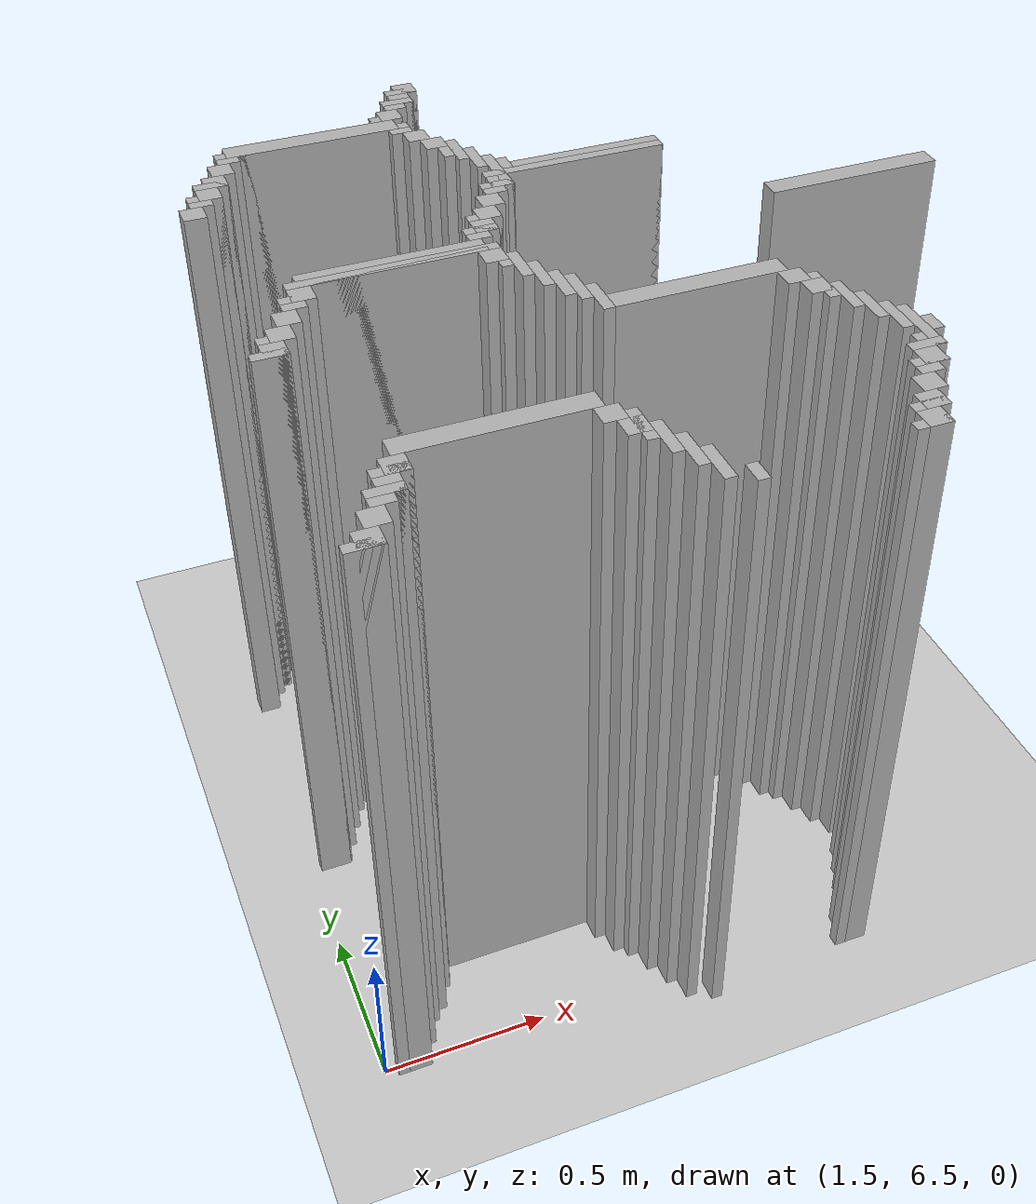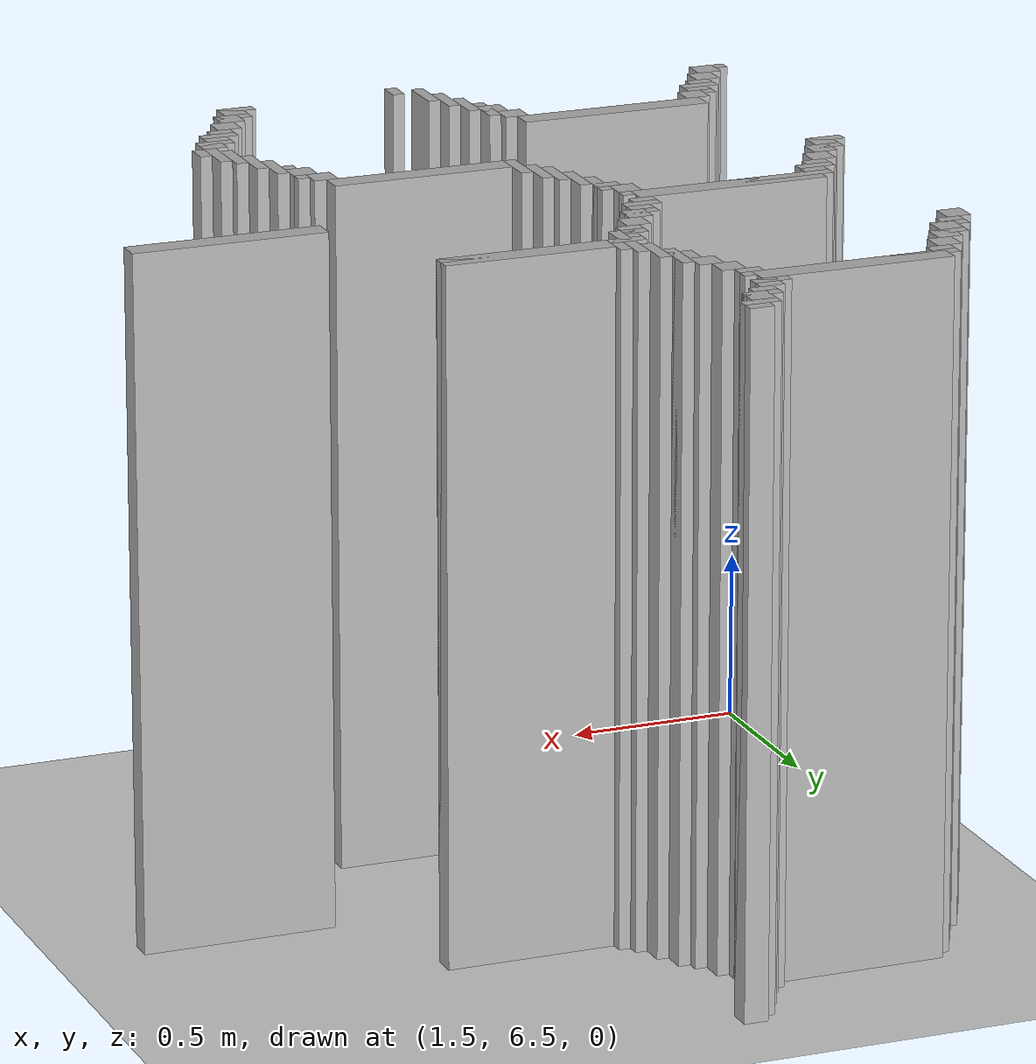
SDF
<sdf version="1.6">
 <world name="slam_world">
  <model name="ground_plane">
   <static>true</static>
   <link name="link">
    <collision name="collision">
     <geometry><plane><normal>0 0 1</normal><size>100 100</size></plane></geometry>
    </collision>
    <visual name="visual">
     <geometry><plane><normal>0 0 1</normal><size>100 100</size></plane></geometry>
     <material>
      <ambient>0.8 0.8 0.8 1</ambient>
      <diffuse>0.8 0.8 0.8 1</diffuse>
      <specular>0.8 0.8 0.8 1</specular>
     </material>
    </visual>
   </link>
  </model>
  <model name="wall_2923">
   <static>true</static>
   <pose>2.4013921113689096 8.735498839907192 1.0 0 0 0</pose>
   <link name="link">
    <collision name="collision">
     <geometry><box><size>0.06960556844547564 0.06960556844547564 2.0</size></box></geometry>
    </collision>
    <visual name="visual">
     <geometry><box><size>0.06960556844547564 0.06960556844547564 2.0</size></box></geometry>
     <material><ambient>0.5 0.5 0.5 1</ambient><diffuse>0.7 0.7 0.7 1</diffuse></material>
    </visual>
   </link>
  </model>
  <model name="wall_2938">
   <static>true</static>
   <pose>2.3839907192575405 8.718097447795824 1.0 0 0 0</pose>
   <link name="link">
    <collision name="collision">
     <geometry><box><size>0.10440835266821345 0.03480278422273782 2.0</size></box></geometry>
    </collision>
    <visual name="visual">
     <geometry><box><size>0.10440835266821345 0.03480278422273782 2.0</size></box></geometry>
     <material><ambient>0.5 0.5 0.5 1</ambient><diffuse>0.7 0.7 0.7 1</diffuse></material>
    </visual>
   </link>
  </model>
  <model name="wall_2952">
   <static>true</static>
   <pose>2.3665893271461718 8.665893271461716 1.0 0 0 0</pose>
   <link name="link">
    <collision name="collision">
     <geometry><box><size>0.06960556844547564 0.06960556844547564 2.0</size></box></geometry>
    </collision>
    <visual name="visual">
     <geometry><box><size>0.06960556844547564 0.06960556844547564 2.0</size></box></geometry>
     <material><ambient>0.5 0.5 0.5 1</ambient><diffuse>0.7 0.7 0.7 1</diffuse></material>
    </visual>
   </link>
  </model>
  <model name="wall_2963">
   <static>true</static>
   <pose>2.3491879350348026 8.648491879350347 1.0 0 0 0</pose>
   <link name="link">
    <collision name="collision">
     <geometry><box><size>0.10440835266821345 0.03480278422273782 2.0</size></box></geometry>
    </collision>
    <visual name="visual">
     <geometry><box><size>0.10440835266821345 0.03480278422273782 2.0</size></box></geometry>
     <material><ambient>0.5 0.5 0.5 1</ambient><diffuse>0.7 0.7 0.7 1</diffuse></material>
    </visual>
   </link>
  </model>
  <model name="wall_2977">
   <static>true</static>
   <pose>2.331786542923434 8.61368909512761 1.0 0 0 0</pose>
   <link name="link">
    <collision name="collision">
     <geometry><box><size>0.06960556844547564 0.03480278422273782 2.0</size></box></geometry>
    </collision>
    <visual name="visual">
     <geometry><box><size>0.06960556844547564 0.03480278422273782 2.0</size></box></geometry>
     <material><ambient>0.5 0.5 0.5 1</ambient><diffuse>0.7 0.7 0.7 1</diffuse></material>
    </visual>
   </link>
  </model>
  <model name="wall_2987">
   <static>true</static>
   <pose>2.296983758700696 8.561484918793504 1.0 0 0 0</pose>
   <link name="link">
    <collision name="collision">
     <geometry><box><size>0.06960556844547564 0.06960556844547564 2.0</size></box></geometry>
    </collision>
    <visual name="visual">
     <geometry><box><size>0.06960556844547564 0.06960556844547564 2.0</size></box></geometry>
     <material><ambient>0.5 0.5 0.5 1</ambient><diffuse>0.7 0.7 0.7 1</diffuse></material>
    </visual>
   </link>
  </model>
  <model name="wall_3002">
   <static>true</static>
   <pose>2.279582366589327 8.544083526682135 1.0 0 0 0</pose>
   <link name="link">
    <collision name="collision">
     <geometry><box><size>0.10440835266821345 0.03480278422273782 2.0</size></box></geometry>
    </collision>
    <visual name="visual">
     <geometry><box><size>0.10440835266821345 0.03480278422273782 2.0</size></box></geometry>
     <material><ambient>0.5 0.5 0.5 1</ambient><diffuse>0.7 0.7 0.7 1</diffuse></material>
    </visual>
   </link>
  </model>
  <model name="wall_3016">
   <static>true</static>
   <pose>2.0185614849187936 8.491879350348027 1.0 0 0 0</pose>
   <link name="link">
    <collision name="collision">
     <geometry><box><size>0.5568445475638051 0.06960556844547564 2.0</size></box></geometry>
    </collision>
    <visual name="visual">
     <geometry><box><size>0.5568445475638051 0.06960556844547564 2.0</size></box></geometry>
     <material><ambient>0.5 0.5 0.5 1</ambient><diffuse>0.7 0.7 0.7 1</diffuse></material>
    </visual>
   </link>
  </model>
  <model name="wall_3029">
   <static>true</static>
   <pose>2.0185614849187936 8.474477958236658 1.0 0 0 0</pose>
   <link name="link">
    <collision name="collision">
     <geometry><box><size>0.6264501160092807 0.03480278422273782 2.0</size></box></geometry>
    </collision>
    <visual name="visual">
     <geometry><box><size>0.6264501160092807 0.03480278422273782 2.0</size></box></geometry>
     <material><ambient>0.5 0.5 0.5 1</ambient><diffuse>0.7 0.7 0.7 1</diffuse></material>
    </visual>
   </link>
  </model>
  <model name="wall_3044">
   <static>true</static>
   <pose>1.740139211136891 8.43967517401392 1.0 0 0 0</pose>
   <link name="link">
    <collision name="collision">
     <geometry><box><size>0.06960556844547564 0.03480278422273782 2.0</size></box></geometry>
    </collision>
    <visual name="visual">
     <geometry><box><size>0.06960556844547564 0.03480278422273782 2.0</size></box></geometry>
     <material><ambient>0.5 0.5 0.5 1</ambient><diffuse>0.7 0.7 0.7 1</diffuse></material>
    </visual>
   </link>
  </model>
  <model name="wall_3045">
   <static>true</static>
   <pose>2.296983758700696 8.43967517401392 1.0 0 0 0</pose>
   <link name="link">
    <collision name="collision">
     <geometry><box><size>0.06960556844547564 0.03480278422273782 2.0</size></box></geometry>
    </collision>
    <visual name="visual">
     <geometry><box><size>0.06960556844547564 0.03480278422273782 2.0</size></box></geometry>
     <material><ambient>0.5 0.5 0.5 1</ambient><diffuse>0.7 0.7 0.7 1</diffuse></material>
    </visual>
   </link>
  </model>
  <model name="wall_3061">
   <static>true</static>
   <pose>1.705336426914153 8.387470997679815 1.0 0 0 0</pose>
   <link name="link">
    <collision name="collision">
     <geometry><box><size>0.06960556844547564 0.06960556844547564 2.0</size></box></geometry>
    </collision>
    <visual name="visual">
     <geometry><box><size>0.06960556844547564 0.06960556844547564 2.0</size></box></geometry>
     <material><ambient>0.5 0.5 0.5 1</ambient><diffuse>0.7 0.7 0.7 1</diffuse></material>
    </visual>
   </link>
  </model>
  <model name="wall_3062">
   <static>true</static>
   <pose>2.331786542923434 8.387470997679815 1.0 0 0 0</pose>
   <link name="link">
    <collision name="collision">
     <geometry><box><size>0.06960556844547564 0.06960556844547564 2.0</size></box></geometry>
    </collision>
    <visual name="visual">
     <geometry><box><size>0.06960556844547564 0.06960556844547564 2.0</size></box></geometry>
     <material><ambient>0.5 0.5 0.5 1</ambient><diffuse>0.7 0.7 0.7 1</diffuse></material>
    </visual>
   </link>
  </model>
  <model name="wall_3078">
   <static>true</static>
   <pose>1.6705336426914152 8.317865429234338 1.0 0 0 0</pose>
   <link name="link">
    <collision name="collision">
     <geometry><box><size>0.06960556844547564 0.06960556844547564 2.0</size></box></geometry>
    </collision>
    <visual name="visual">
     <geometry><box><size>0.06960556844547564 0.06960556844547564 2.0</size></box></geometry>
     <material><ambient>0.5 0.5 0.5 1</ambient><diffuse>0.7 0.7 0.7 1</diffuse></material>
    </visual>
   </link>
  </model>
  <model name="wall_3079">
   <static>true</static>
   <pose>2.3665893271461718 8.317865429234338 1.0 0 0 0</pose>
   <link name="link">
    <collision name="collision">
     <geometry><box><size>0.06960556844547564 0.06960556844547564 2.0</size></box></geometry>
    </collision>
    <visual name="visual">
     <geometry><box><size>0.06960556844547564 0.06960556844547564 2.0</size></box></geometry>
     <material><ambient>0.5 0.5 0.5 1</ambient><diffuse>0.7 0.7 0.7 1</diffuse></material>
    </visual>
   </link>
  </model>
  <model name="wall_3095">
   <static>true</static>
   <pose>1.6531322505800463 8.30046403712297 1.0 0 0 0</pose>
   <link name="link">
    <collision name="collision">
     <geometry><box><size>0.10440835266821345 0.03480278422273782 2.0</size></box></geometry>
    </collision>
    <visual name="visual">
     <geometry><box><size>0.10440835266821345 0.03480278422273782 2.0</size></box></geometry>
     <material><ambient>0.5 0.5 0.5 1</ambient><diffuse>0.7 0.7 0.7 1</diffuse></material>
    </visual>
   </link>
  </model>
  <model name="wall_3096">
   <static>true</static>
   <pose>2.4187935034802783 8.248259860788863 1.0 0 0 0</pose>
   <link name="link">
    <collision name="collision">
     <geometry><box><size>0.03480278422273782 0.13921113689095127 2.0</size></box></geometry>
    </collision>
    <visual name="visual">
     <geometry><box><size>0.03480278422273782 0.13921113689095127 2.0</size></box></geometry>
     <material><ambient>0.5 0.5 0.5 1</ambient><diffuse>0.7 0.7 0.7 1</diffuse></material>
    </visual>
   </link>
  </model>
  <model name="wall_3111">
   <static>true</static>
   <pose>1.6357308584686774 8.248259860788863 1.0 0 0 0</pose>
   <link name="link">
    <collision name="collision">
     <geometry><box><size>0.06960556844547564 0.06960556844547564 2.0</size></box></geometry>
    </collision>
    <visual name="visual">
     <geometry><box><size>0.06960556844547564 0.06960556844547564 2.0</size></box></geometry>
     <material><ambient>0.5 0.5 0.5 1</ambient><diffuse>0.7 0.7 0.7 1</diffuse></material>
    </visual>
   </link>
  </model>
  <model name="wall_3112">
   <static>true</static>
   <pose>2.4013921113689096 8.248259860788863 1.0 0 0 0</pose>
   <link name="link">
    <collision name="collision">
     <geometry><box><size>0.06960556844547564 0.06960556844547564 2.0</size></box></geometry>
    </collision>
    <visual name="visual">
     <geometry><box><size>0.06960556844547564 0.06960556844547564 2.0</size></box></geometry>
     <material><ambient>0.5 0.5 0.5 1</ambient><diffuse>0.7 0.7 0.7 1</diffuse></material>
    </visual>
   </link>
  </model>
  <model name="wall_3125">
   <static>true</static>
   <pose>1.6183294663573085 8.230858468677495 1.0 0 0 0</pose>
   <link name="link">
    <collision name="collision">
     <geometry><box><size>0.10440835266821345 0.03480278422273782 2.0</size></box></geometry>
    </collision>
    <visual name="visual">
     <geometry><box><size>0.10440835266821345 0.03480278422273782 2.0</size></box></geometry>
     <material><ambient>0.5 0.5 0.5 1</ambient><diffuse>0.7 0.7 0.7 1</diffuse></material>
    </visual>
   </link>
  </model>
  <model name="wall_3126">
   <static>true</static>
   <pose>2.453596287703016 8.178654292343387 1.0 0 0 0</pose>
   <link name="link">
    <collision name="collision">
     <geometry><box><size>0.03480278422273782 0.13921113689095127 2.0</size></box></geometry>
    </collision>
    <visual name="visual">
     <geometry><box><size>0.03480278422273782 0.13921113689095127 2.0</size></box></geometry>
     <material><ambient>0.5 0.5 0.5 1</ambient><diffuse>0.7 0.7 0.7 1</diffuse></material>
    </visual>
   </link>
  </model>
  <model name="wall_3141">
   <static>true</static>
   <pose>1.6009280742459395 8.196055684454755 1.0 0 0 0</pose>
   <link name="link">
    <collision name="collision">
     <geometry><box><size>0.06960556844547564 0.03480278422273782 2.0</size></box></geometry>
    </collision>
    <visual name="visual">
     <geometry><box><size>0.06960556844547564 0.03480278422273782 2.0</size></box></geometry>
     <material><ambient>0.5 0.5 0.5 1</ambient><diffuse>0.7 0.7 0.7 1</diffuse></material>
    </visual>
   </link>
  </model>
  <model name="wall_3151">
   <static>true</static>
   <pose>1.5661252900232019 8.14385150812065 1.0 0 0 0</pose>
   <link name="link">
    <collision name="collision">
     <geometry><box><size>0.06960556844547564 0.06960556844547564 2.0</size></box></geometry>
    </collision>
    <visual name="visual">
     <geometry><box><size>0.06960556844547564 0.06960556844547564 2.0</size></box></geometry>
     <material><ambient>0.5 0.5 0.5 1</ambient><diffuse>0.7 0.7 0.7 1</diffuse></material>
    </visual>
   </link>
  </model>
  <model name="wall_3152">
   <static>true</static>
   <pose>2.488399071925754 8.074245939675174 1.0 0 0 0</pose>
   <link name="link">
    <collision name="collision">
     <geometry><box><size>0.03480278422273782 0.2088167053364269 2.0</size></box></geometry>
    </collision>
    <visual name="visual">
     <geometry><box><size>0.03480278422273782 0.2088167053364269 2.0</size></box></geometry>
     <material><ambient>0.5 0.5 0.5 1</ambient><diffuse>0.7 0.7 0.7 1</diffuse></material>
    </visual>
   </link>
  </model>
  <model name="wall_3166">
   <static>true</static>
   <pose>2.523201856148492 8.091647331786543 1.0 0 0 0</pose>
   <link name="link">
    <collision name="collision">
     <geometry><box><size>0.03480278422273782 0.10440835266821345 2.0</size></box></geometry>
    </collision>
    <visual name="visual">
     <geometry><box><size>0.03480278422273782 0.10440835266821345 2.0</size></box></geometry>
     <material><ambient>0.5 0.5 0.5 1</ambient><diffuse>0.7 0.7 0.7 1</diffuse></material>
    </visual>
   </link>
  </model>
  <model name="wall_3181">
   <static>true</static>
   <pose>2.784222737819025 8.074245939675174 1.0 0 0 0</pose>
   <link name="link">
    <collision name="collision">
     <geometry><box><size>0.4872389791183295 0.06960556844547564 2.0</size></box></geometry>
    </collision>
    <visual name="visual">
     <geometry><box><size>0.4872389791183295 0.06960556844547564 2.0</size></box></geometry>
     <material><ambient>0.5 0.5 0.5 1</ambient><diffuse>0.7 0.7 0.7 1</diffuse></material>
    </visual>
   </link>
  </model>
  <model name="wall_3193">
   <static>true</static>
   <pose>2.7320185614849186 8.056844547563804 1.0 0 0 0</pose>
   <link name="link">
    <collision name="collision">
     <geometry><box><size>0.5916473317865429 0.03480278422273782 2.0</size></box></geometry>
    </collision>
    <visual name="visual">
     <geometry><box><size>0.5916473317865429 0.03480278422273782 2.0</size></box></geometry>
     <material><ambient>0.5 0.5 0.5 1</ambient><diffuse>0.7 0.7 0.7 1</diffuse></material>
    </visual>
   </link>
  </model>
  <model name="wall_3206">
   <static>true</static>
   <pose>2.470997679814385 8.004640371229698 1.0 0 0 0</pose>
   <link name="link">
    <collision name="collision">
     <geometry><box><size>0.06960556844547564 0.06960556844547564 2.0</size></box></geometry>
    </collision>
    <visual name="visual">
     <geometry><box><size>0.06960556844547564 0.06960556844547564 2.0</size></box></geometry>
     <material><ambient>0.5 0.5 0.5 1</ambient><diffuse>0.7 0.7 0.7 1</diffuse></material>
    </visual>
   </link>
  </model>
  <model name="wall_3219">
   <static>true</static>
   <pose>2.453596287703016 7.987238979118329 1.0 0 0 0</pose>
   <link name="link">
    <collision name="collision">
     <geometry><box><size>0.10440835266821345 0.03480278422273782 2.0</size></box></geometry>
    </collision>
    <visual name="visual">
     <geometry><box><size>0.10440835266821345 0.03480278422273782 2.0</size></box></geometry>
     <material><ambient>0.5 0.5 0.5 1</ambient><diffuse>0.7 0.7 0.7 1</diffuse></material>
    </visual>
   </link>
  </model>
  <model name="wall_3231">
   <static>true</static>
   <pose>2.436194895591647 7.952436194895592 1.0 0 0 0</pose>
   <link name="link">
    <collision name="collision">
     <geometry><box><size>0.06960556844547564 0.03480278422273782 2.0</size></box></geometry>
    </collision>
    <visual name="visual">
     <geometry><box><size>0.06960556844547564 0.03480278422273782 2.0</size></box></geometry>
     <material><ambient>0.5 0.5 0.5 1</ambient><diffuse>0.7 0.7 0.7 1</diffuse></material>
    </visual>
   </link>
  </model>
  <model name="wall_3237">
   <static>true</static>
   <pose>2.4013921113689096 7.900232018561485 1.0 0 0 0</pose>
   <link name="link">
    <collision name="collision">
     <geometry><box><size>0.06960556844547564 0.06960556844547564 2.0</size></box></geometry>
    </collision>
    <visual name="visual">
     <geometry><box><size>0.06960556844547564 0.06960556844547564 2.0</size></box></geometry>
     <material><ambient>0.5 0.5 0.5 1</ambient><diffuse>0.7 0.7 0.7 1</diffuse></material>
    </visual>
   </link>
  </model>
  <model name="wall_3250">
   <static>true</static>
   <pose>2.3665893271461718 7.830626450116009 1.0 0 0 0</pose>
   <link name="link">
    <collision name="collision">
     <geometry><box><size>0.06960556844547564 0.06960556844547564 2.0</size></box></geometry>
    </collision>
    <visual name="visual">
     <geometry><box><size>0.06960556844547564 0.06960556844547564 2.0</size></box></geometry>
     <material><ambient>0.5 0.5 0.5 1</ambient><diffuse>0.7 0.7 0.7 1</diffuse></material>
    </visual>
   </link>
  </model>
  <model name="wall_3263">
   <static>true</static>
   <pose>2.3491879350348026 7.81322505800464 1.0 0 0 0</pose>
   <link name="link">
    <collision name="collision">
     <geometry><box><size>0.10440835266821345 0.03480278422273782 2.0</size></box></geometry>
    </collision>
    <visual name="visual">
     <geometry><box><size>0.10440835266821345 0.03480278422273782 2.0</size></box></geometry>
     <material><ambient>0.5 0.5 0.5 1</ambient><diffuse>0.7 0.7 0.7 1</diffuse></material>
    </visual>
   </link>
  </model>
  <model name="wall_3275">
   <static>true</static>
   <pose>2.331786542923434 7.761020881670533 1.0 0 0 0</pose>
   <link name="link">
    <collision name="collision">
     <geometry><box><size>0.06960556844547564 0.06960556844547564 2.0</size></box></geometry>
    </collision>
    <visual name="visual">
     <geometry><box><size>0.06960556844547564 0.06960556844547564 2.0</size></box></geometry>
     <material><ambient>0.5 0.5 0.5 1</ambient><diffuse>0.7 0.7 0.7 1</diffuse></material>
    </visual>
   </link>
  </model>
  <model name="wall_3281">
   <static>true</static>
   <pose>2.3143851508120648 7.743619489559165 1.0 0 0 0</pose>
   <link name="link">
    <collision name="collision">
     <geometry><box><size>0.10440835266821345 0.03480278422273782 2.0</size></box></geometry>
    </collision>
    <visual name="visual">
     <geometry><box><size>0.10440835266821345 0.03480278422273782 2.0</size></box></geometry>
     <material><ambient>0.5 0.5 0.5 1</ambient><diffuse>0.7 0.7 0.7 1</diffuse></material>
    </visual>
   </link>
  </model>
  <model name="wall_3293">
   <static>true</static>
   <pose>2.296983758700696 7.708816705336426 1.0 0 0 0</pose>
   <link name="link">
    <collision name="collision">
     <geometry><box><size>0.06960556844547564 0.03480278422273782 2.0</size></box></geometry>
    </collision>
    <visual name="visual">
     <geometry><box><size>0.06960556844547564 0.03480278422273782 2.0</size></box></geometry>
     <material><ambient>0.5 0.5 0.5 1</ambient><diffuse>0.7 0.7 0.7 1</diffuse></material>
    </visual>
   </link>
  </model>
  <model name="wall_3300">
   <static>true</static>
   <pose>2.0185614849187936 7.65661252900232 1.0 0 0 0</pose>
   <link name="link">
    <collision name="collision">
     <geometry><box><size>0.5568445475638051 0.06960556844547564 2.0</size></box></geometry>
    </collision>
    <visual name="visual">
     <geometry><box><size>0.5568445475638051 0.06960556844547564 2.0</size></box></geometry>
     <material><ambient>0.5 0.5 0.5 1</ambient><diffuse>0.7 0.7 0.7 1</diffuse></material>
    </visual>
   </link>
  </model>
  <model name="wall_3301">
   <static>true</static>
   <pose>3.480278422273782 7.65661252900232 1.0 0 0 0</pose>
   <link name="link">
    <collision name="collision">
     <geometry><box><size>0.5568445475638051 0.06960556844547564 2.0</size></box></geometry>
    </collision>
    <visual name="visual">
     <geometry><box><size>0.5568445475638051 0.06960556844547564 2.0</size></box></geometry>
     <material><ambient>0.5 0.5 0.5 1</ambient><diffuse>0.7 0.7 0.7 1</diffuse></material>
    </visual>
   </link>
  </model>
  <model name="wall_3314">
   <static>true</static>
   <pose>2.0185614849187936 7.6392111368909505 1.0 0 0 0</pose>
   <link name="link">
    <collision name="collision">
     <geometry><box><size>0.6264501160092807 0.03480278422273782 2.0</size></box></geometry>
    </collision>
    <visual name="visual">
     <geometry><box><size>0.6264501160092807 0.03480278422273782 2.0</size></box></geometry>
     <material><ambient>0.5 0.5 0.5 1</ambient><diffuse>0.7 0.7 0.7 1</diffuse></material>
    </visual>
   </link>
  </model>
  <model name="wall_3326">
   <static>true</static>
   <pose>1.740139211136891 7.587006960556844 1.0 0 0 0</pose>
   <link name="link">
    <collision name="collision">
     <geometry><box><size>0.06960556844547564 0.06960556844547564 2.0</size></box></geometry>
    </collision>
    <visual name="visual">
     <geometry><box><size>0.06960556844547564 0.06960556844547564 2.0</size></box></geometry>
     <material><ambient>0.5 0.5 0.5 1</ambient><diffuse>0.7 0.7 0.7 1</diffuse></material>
    </visual>
   </link>
  </model>
  <model name="wall_3327">
   <static>true</static>
   <pose>2.296983758700696 7.587006960556844 1.0 0 0 0</pose>
   <link name="link">
    <collision name="collision">
     <geometry><box><size>0.06960556844547564 0.06960556844547564 2.0</size></box></geometry>
    </collision>
    <visual name="visual">
     <geometry><box><size>0.06960556844547564 0.06960556844547564 2.0</size></box></geometry>
     <material><ambient>0.5 0.5 0.5 1</ambient><diffuse>0.7 0.7 0.7 1</diffuse></material>
    </visual>
   </link>
  </model>
  <model name="wall_3341">
   <static>true</static>
   <pose>1.722737819025522 7.569605568445476 1.0 0 0 0</pose>
   <link name="link">
    <collision name="collision">
     <geometry><box><size>0.10440835266821345 0.03480278422273782 2.0</size></box></geometry>
    </collision>
    <visual name="visual">
     <geometry><box><size>0.10440835266821345 0.03480278422273782 2.0</size></box></geometry>
     <material><ambient>0.5 0.5 0.5 1</ambient><diffuse>0.7 0.7 0.7 1</diffuse></material>
    </visual>
   </link>
  </model>
  <model name="wall_3342">
   <static>true</static>
   <pose>2.3491879350348026 7.517401392111369 1.0 0 0 0</pose>
   <link name="link">
    <collision name="collision">
     <geometry><box><size>0.03480278422273782 0.13921113689095127 2.0</size></box></geometry>
    </collision>
    <visual name="visual">
     <geometry><box><size>0.03480278422273782 0.13921113689095127 2.0</size></box></geometry>
     <material><ambient>0.5 0.5 0.5 1</ambient><diffuse>0.7 0.7 0.7 1</diffuse></material>
    </visual>
   </link>
  </model>
  <model name="wall_3355">
   <static>true</static>
   <pose>1.705336426914153 7.534802784222737 1.0 0 0 0</pose>
   <link name="link">
    <collision name="collision">
     <geometry><box><size>0.06960556844547564 0.03480278422273782 2.0</size></box></geometry>
    </collision>
    <visual name="visual">
     <geometry><box><size>0.06960556844547564 0.03480278422273782 2.0</size></box></geometry>
     <material><ambient>0.5 0.5 0.5 1</ambient><diffuse>0.7 0.7 0.7 1</diffuse></material>
    </visual>
   </link>
  </model>
  <model name="wall_3356">
   <static>true</static>
   <pose>2.331786542923434 7.534802784222737 1.0 0 0 0</pose>
   <link name="link">
    <collision name="collision">
     <geometry><box><size>0.06960556844547564 0.03480278422273782 2.0</size></box></geometry>
    </collision>
    <visual name="visual">
     <geometry><box><size>0.06960556844547564 0.03480278422273782 2.0</size></box></geometry>
     <material><ambient>0.5 0.5 0.5 1</ambient><diffuse>0.7 0.7 0.7 1</diffuse></material>
    </visual>
   </link>
  </model>
  <model name="wall_3366">
   <static>true</static>
   <pose>1.6705336426914152 7.48259860788863 1.0 0 0 0</pose>
   <link name="link">
    <collision name="collision">
     <geometry><box><size>0.06960556844547564 0.06960556844547564 2.0</size></box></geometry>
    </collision>
    <visual name="visual">
     <geometry><box><size>0.06960556844547564 0.06960556844547564 2.0</size></box></geometry>
     <material><ambient>0.5 0.5 0.5 1</ambient><diffuse>0.7 0.7 0.7 1</diffuse></material>
    </visual>
   </link>
  </model>
  <model name="wall_3367">
   <static>true</static>
   <pose>2.3839907192575405 7.447795823665893 1.0 0 0 0</pose>
   <link name="link">
    <collision name="collision">
     <geometry><box><size>0.03480278422273782 0.13921113689095127 2.0</size></box></geometry>
    </collision>
    <visual name="visual">
     <geometry><box><size>0.03480278422273782 0.13921113689095127 2.0</size></box></geometry>
     <material><ambient>0.5 0.5 0.5 1</ambient><diffuse>0.7 0.7 0.7 1</diffuse></material>
    </visual>
   </link>
  </model>
  <model name="wall_3381">
   <static>true</static>
   <pose>1.6357308584686774 7.412993039443156 1.0 0 0 0</pose>
   <link name="link">
    <collision name="collision">
     <geometry><box><size>0.06960556844547564 0.06960556844547564 2.0</size></box></geometry>
    </collision>
    <visual name="visual">
     <geometry><box><size>0.06960556844547564 0.06960556844547564 2.0</size></box></geometry>
     <material><ambient>0.5 0.5 0.5 1</ambient><diffuse>0.7 0.7 0.7 1</diffuse></material>
    </visual>
   </link>
  </model>
  <model name="wall_3382">
   <static>true</static>
   <pose>2.4187935034802783 7.378190255220417 1.0 0 0 0</pose>
   <link name="link">
    <collision name="collision">
     <geometry><box><size>0.03480278422273782 0.13921113689095127 2.0</size></box></geometry>
    </collision>
    <visual name="visual">
     <geometry><box><size>0.03480278422273782 0.13921113689095127 2.0</size></box></geometry>
     <material><ambient>0.5 0.5 0.5 1</ambient><diffuse>0.7 0.7 0.7 1</diffuse></material>
    </visual>
   </link>
  </model>
  <model name="wall_3396">
   <static>true</static>
   <pose>1.6183294663573085 7.395591647331786 1.0 0 0 0</pose>
   <link name="link">
    <collision name="collision">
     <geometry><box><size>0.10440835266821345 0.03480278422273782 2.0</size></box></geometry>
    </collision>
    <visual name="visual">
     <geometry><box><size>0.10440835266821345 0.03480278422273782 2.0</size></box></geometry>
     <material><ambient>0.5 0.5 0.5 1</ambient><diffuse>0.7 0.7 0.7 1</diffuse></material>
    </visual>
   </link>
  </model>
  <model name="wall_3397">
   <static>true</static>
   <pose>2.453596287703016 7.34338747099768 1.0 0 0 0</pose>
   <link name="link">
    <collision name="collision">
     <geometry><box><size>0.03480278422273782 0.13921113689095127 2.0</size></box></geometry>
    </collision>
    <visual name="visual">
     <geometry><box><size>0.03480278422273782 0.13921113689095127 2.0</size></box></geometry>
     <material><ambient>0.5 0.5 0.5 1</ambient><diffuse>0.7 0.7 0.7 1</diffuse></material>
    </visual>
   </link>
  </model>
  <model name="wall_3410">
   <static>true</static>
   <pose>1.6009280742459395 7.34338747099768 1.0 0 0 0</pose>
   <link name="link">
    <collision name="collision">
     <geometry><box><size>0.06960556844547564 0.06960556844547564 2.0</size></box></geometry>
    </collision>
    <visual name="visual">
     <geometry><box><size>0.06960556844547564 0.06960556844547564 2.0</size></box></geometry>
     <material><ambient>0.5 0.5 0.5 1</ambient><diffuse>0.7 0.7 0.7 1</diffuse></material>
    </visual>
   </link>
  </model>
  <model name="wall_3418">
   <static>true</static>
   <pose>1.5835266821345706 7.32598607888631 1.0 0 0 0</pose>
   <link name="link">
    <collision name="collision">
     <geometry><box><size>0.10440835266821345 0.03480278422273782 2.0</size></box></geometry>
    </collision>
    <visual name="visual">
     <geometry><box><size>0.10440835266821345 0.03480278422273782 2.0</size></box></geometry>
     <material><ambient>0.5 0.5 0.5 1</ambient><diffuse>0.7 0.7 0.7 1</diffuse></material>
    </visual>
   </link>
  </model>
  <model name="wall_3419">
   <static>true</static>
   <pose>2.488399071925754 7.273781902552204 1.0 0 0 0</pose>
   <link name="link">
    <collision name="collision">
     <geometry><box><size>0.03480278422273782 0.13921113689095127 2.0</size></box></geometry>
    </collision>
    <visual name="visual">
     <geometry><box><size>0.03480278422273782 0.13921113689095127 2.0</size></box></geometry>
     <material><ambient>0.5 0.5 0.5 1</ambient><diffuse>0.7 0.7 0.7 1</diffuse></material>
    </visual>
   </link>
  </model>
  <model name="wall_3440">
   <static>true</static>
   <pose>2.7668213457076565 7.238979118329466 1.0 0 0 0</pose>
   <link name="link">
    <collision name="collision">
     <geometry><box><size>0.5220417633410672 0.06960556844547564 2.0</size></box></geometry>
    </collision>
    <visual name="visual">
     <geometry><box><size>0.5220417633410672 0.06960556844547564 2.0</size></box></geometry>
     <material><ambient>0.5 0.5 0.5 1</ambient><diffuse>0.7 0.7 0.7 1</diffuse></material>
    </visual>
   </link>
  </model>
  <model name="wall_3451">
   <static>true</static>
   <pose>3.02784222737819 7.16937354988399 1.0 0 0 0</pose>
   <link name="link">
    <collision name="collision">
     <geometry><box><size>0.06960556844547564 0.06960556844547564 2.0</size></box></geometry>
    </collision>
    <visual name="visual">
     <geometry><box><size>0.06960556844547564 0.06960556844547564 2.0</size></box></geometry>
     <material><ambient>0.5 0.5 0.5 1</ambient><diffuse>0.7 0.7 0.7 1</diffuse></material>
    </visual>
   </link>
  </model>
  <model name="wall_3464">
   <static>true</static>
   <pose>3.0800464037122968 7.099767981438514 1.0 0 0 0</pose>
   <link name="link">
    <collision name="collision">
     <geometry><box><size>0.03480278422273782 0.13921113689095127 2.0</size></box></geometry>
    </collision>
    <visual name="visual">
     <geometry><box><size>0.03480278422273782 0.13921113689095127 2.0</size></box></geometry>
     <material><ambient>0.5 0.5 0.5 1</ambient><diffuse>0.7 0.7 0.7 1</diffuse></material>
    </visual>
   </link>
  </model>
  <model name="wall_3477">
   <static>true</static>
   <pose>3.062645011600928 7.099767981438514 1.0 0 0 0</pose>
   <link name="link">
    <collision name="collision">
     <geometry><box><size>0.06960556844547564 0.06960556844547564 2.0</size></box></geometry>
    </collision>
    <visual name="visual">
     <geometry><box><size>0.06960556844547564 0.06960556844547564 2.0</size></box></geometry>
     <material><ambient>0.5 0.5 0.5 1</ambient><diffuse>0.7 0.7 0.7 1</diffuse></material>
    </visual>
   </link>
  </model>
  <model name="wall_3490">
   <static>true</static>
   <pose>3.1148491879350346 7.03016241299304 1.0 0 0 0</pose>
   <link name="link">
    <collision name="collision">
     <geometry><box><size>0.03480278422273782 0.13921113689095127 2.0</size></box></geometry>
    </collision>
    <visual name="visual">
     <geometry><box><size>0.03480278422273782 0.13921113689095127 2.0</size></box></geometry>
     <material><ambient>0.5 0.5 0.5 1</ambient><diffuse>0.7 0.7 0.7 1</diffuse></material>
    </visual>
   </link>
  </model>
  <model name="wall_3507">
   <static>true</static>
   <pose>3.1496519721577725 6.960556844547564 1.0 0 0 0</pose>
   <link name="link">
    <collision name="collision">
     <geometry><box><size>0.03480278422273782 0.13921113689095127 2.0</size></box></geometry>
    </collision>
    <visual name="visual">
     <geometry><box><size>0.03480278422273782 0.13921113689095127 2.0</size></box></geometry>
     <material><ambient>0.5 0.5 0.5 1</ambient><diffuse>0.7 0.7 0.7 1</diffuse></material>
    </visual>
   </link>
  </model>
  <model name="wall_3524">
   <static>true</static>
   <pose>3.1844547563805103 6.890951276102088 1.0 0 0 0</pose>
   <link name="link">
    <collision name="collision">
     <geometry><box><size>0.03480278422273782 0.13921113689095127 2.0</size></box></geometry>
    </collision>
    <visual name="visual">
     <geometry><box><size>0.03480278422273782 0.13921113689095127 2.0</size></box></geometry>
     <material><ambient>0.5 0.5 0.5 1</ambient><diffuse>0.7 0.7 0.7 1</diffuse></material>
    </visual>
   </link>
  </model>
  <model name="wall_3537">
   <static>true</static>
   <pose>3.219257540603248 6.821345707656612 1.0 0 0 0</pose>
   <link name="link">
    <collision name="collision">
     <geometry><box><size>0.03480278422273782 0.2088167053364269 2.0</size></box></geometry>
    </collision>
    <visual name="visual">
     <geometry><box><size>0.03480278422273782 0.2088167053364269 2.0</size></box></geometry>
     <material><ambient>0.5 0.5 0.5 1</ambient><diffuse>0.7 0.7 0.7 1</diffuse></material>
    </visual>
   </link>
  </model>
  <model name="wall_3555">
   <static>true</static>
   <pose>2.0185614849187936 6.821345707656612 1.0 0 0 0</pose>
   <link name="link">
    <collision name="collision">
     <geometry><box><size>0.5568445475638051 0.06960556844547564 2.0</size></box></geometry>
    </collision>
    <visual name="visual">
     <geometry><box><size>0.5568445475638051 0.06960556844547564 2.0</size></box></geometry>
     <material><ambient>0.5 0.5 0.5 1</ambient><diffuse>0.7 0.7 0.7 1</diffuse></material>
    </visual>
   </link>
  </model>
  <model name="wall_3556">
   <static>true</static>
   <pose>3.254060324825986 6.821345707656612 1.0 0 0 0</pose>
   <link name="link">
    <collision name="collision">
     <geometry><box><size>0.03480278422273782 0.06960556844547564 2.0</size></box></geometry>
    </collision>
    <visual name="visual">
     <geometry><box><size>0.03480278422273782 0.06960556844547564 2.0</size></box></geometry>
     <material><ambient>0.5 0.5 0.5 1</ambient><diffuse>0.7 0.7 0.7 1</diffuse></material>
    </visual>
   </link>
  </model>
  <model name="wall_3574">
   <static>true</static>
   <pose>1.740139211136891 6.751740139211137 1.0 0 0 0</pose>
   <link name="link">
    <collision name="collision">
     <geometry><box><size>0.06960556844547564 0.06960556844547564 2.0</size></box></geometry>
    </collision>
    <visual name="visual">
     <geometry><box><size>0.06960556844547564 0.06960556844547564 2.0</size></box></geometry>
     <material><ambient>0.5 0.5 0.5 1</ambient><diffuse>0.7 0.7 0.7 1</diffuse></material>
    </visual>
   </link>
  </model>
  <model name="wall_3575">
   <static>true</static>
   <pose>2.296983758700696 6.751740139211137 1.0 0 0 0</pose>
   <link name="link">
    <collision name="collision">
     <geometry><box><size>0.06960556844547564 0.06960556844547564 2.0</size></box></geometry>
    </collision>
    <visual name="visual">
     <geometry><box><size>0.06960556844547564 0.06960556844547564 2.0</size></box></geometry>
     <material><ambient>0.5 0.5 0.5 1</ambient><diffuse>0.7 0.7 0.7 1</diffuse></material>
    </visual>
   </link>
  </model>
  <model name="wall_3576">
   <static>true</static>
   <pose>3.201856148491879 6.751740139211137 1.0 0 0 0</pose>
   <link name="link">
    <collision name="collision">
     <geometry><box><size>0.06960556844547564 0.06960556844547564 2.0</size></box></geometry>
    </collision>
    <visual name="visual">
     <geometry><box><size>0.06960556844547564 0.06960556844547564 2.0</size></box></geometry>
     <material><ambient>0.5 0.5 0.5 1</ambient><diffuse>0.7 0.7 0.7 1</diffuse></material>
    </visual>
   </link>
  </model>
  <model name="wall_3588">
   <static>true</static>
   <pose>1.722737819025522 6.734338747099768 1.0 0 0 0</pose>
   <link name="link">
    <collision name="collision">
     <geometry><box><size>0.10440835266821345 0.03480278422273782 2.0</size></box></geometry>
    </collision>
    <visual name="visual">
     <geometry><box><size>0.10440835266821345 0.03480278422273782 2.0</size></box></geometry>
     <material><ambient>0.5 0.5 0.5 1</ambient><diffuse>0.7 0.7 0.7 1</diffuse></material>
    </visual>
   </link>
  </model>
  <model name="wall_3589">
   <static>true</static>
   <pose>2.3491879350348026 6.682134570765661 1.0 0 0 0</pose>
   <link name="link">
    <collision name="collision">
     <geometry><box><size>0.03480278422273782 0.13921113689095127 2.0</size></box></geometry>
    </collision>
    <visual name="visual">
     <geometry><box><size>0.03480278422273782 0.13921113689095127 2.0</size></box></geometry>
     <material><ambient>0.5 0.5 0.5 1</ambient><diffuse>0.7 0.7 0.7 1</diffuse></material>
    </visual>
   </link>
  </model>
  <model name="wall_3590">
   <static>true</static>
   <pose>3.1844547563805103 6.734338747099768 1.0 0 0 0</pose>
   <link name="link">
    <collision name="collision">
     <geometry><box><size>0.10440835266821345 0.03480278422273782 2.0</size></box></geometry>
    </collision>
    <visual name="visual">
     <geometry><box><size>0.10440835266821345 0.03480278422273782 2.0</size></box></geometry>
     <material><ambient>0.5 0.5 0.5 1</ambient><diffuse>0.7 0.7 0.7 1</diffuse></material>
    </visual>
   </link>
  </model>
  <model name="wall_3602">
   <static>true</static>
   <pose>1.705336426914153 6.682134570765661 1.0 0 0 0</pose>
   <link name="link">
    <collision name="collision">
     <geometry><box><size>0.06960556844547564 0.06960556844547564 2.0</size></box></geometry>
    </collision>
    <visual name="visual">
     <geometry><box><size>0.06960556844547564 0.06960556844547564 2.0</size></box></geometry>
     <material><ambient>0.5 0.5 0.5 1</ambient><diffuse>0.7 0.7 0.7 1</diffuse></material>
    </visual>
   </link>
  </model>
  <model name="wall_3603">
   <static>true</static>
   <pose>2.331786542923434 6.682134570765661 1.0 0 0 0</pose>
   <link name="link">
    <collision name="collision">
     <geometry><box><size>0.06960556844547564 0.06960556844547564 2.0</size></box></geometry>
    </collision>
    <visual name="visual">
     <geometry><box><size>0.06960556844547564 0.06960556844547564 2.0</size></box></geometry>
     <material><ambient>0.5 0.5 0.5 1</ambient><diffuse>0.7 0.7 0.7 1</diffuse></material>
    </visual>
   </link>
  </model>
  <model name="wall_3604">
   <static>true</static>
   <pose>3.167053364269141 6.682134570765661 1.0 0 0 0</pose>
   <link name="link">
    <collision name="collision">
     <geometry><box><size>0.06960556844547564 0.06960556844547564 2.0</size></box></geometry>
    </collision>
    <visual name="visual">
     <geometry><box><size>0.06960556844547564 0.06960556844547564 2.0</size></box></geometry>
     <material><ambient>0.5 0.5 0.5 1</ambient><diffuse>0.7 0.7 0.7 1</diffuse></material>
    </visual>
   </link>
  </model>
  <model name="wall_3616">
   <static>true</static>
   <pose>1.6879350348027842 6.664733178654292 1.0 0 0 0</pose>
   <link name="link">
    <collision name="collision">
     <geometry><box><size>0.10440835266821345 0.03480278422273782 2.0</size></box></geometry>
    </collision>
    <visual name="visual">
     <geometry><box><size>0.10440835266821345 0.03480278422273782 2.0</size></box></geometry>
     <material><ambient>0.5 0.5 0.5 1</ambient><diffuse>0.7 0.7 0.7 1</diffuse></material>
    </visual>
   </link>
  </model>
  <model name="wall_3617">
   <static>true</static>
   <pose>2.3839907192575405 6.612529002320185 1.0 0 0 0</pose>
   <link name="link">
    <collision name="collision">
     <geometry><box><size>0.03480278422273782 0.13921113689095127 2.0</size></box></geometry>
    </collision>
    <visual name="visual">
     <geometry><box><size>0.03480278422273782 0.13921113689095127 2.0</size></box></geometry>
     <material><ambient>0.5 0.5 0.5 1</ambient><diffuse>0.7 0.7 0.7 1</diffuse></material>
    </visual>
   </link>
  </model>
  <model name="wall_3618">
   <static>true</static>
   <pose>3.1496519721577725 6.664733178654292 1.0 0 0 0</pose>
   <link name="link">
    <collision name="collision">
     <geometry><box><size>0.10440835266821345 0.03480278422273782 2.0</size></box></geometry>
    </collision>
    <visual name="visual">
     <geometry><box><size>0.10440835266821345 0.03480278422273782 2.0</size></box></geometry>
     <material><ambient>0.5 0.5 0.5 1</ambient><diffuse>0.7 0.7 0.7 1</diffuse></material>
    </visual>
   </link>
  </model>
  <model name="wall_3629">
   <static>true</static>
   <pose>1.6705336426914152 6.629930394431554 1.0 0 0 0</pose>
   <link name="link">
    <collision name="collision">
     <geometry><box><size>0.06960556844547564 0.03480278422273782 2.0</size></box></geometry>
    </collision>
    <visual name="visual">
     <geometry><box><size>0.06960556844547564 0.03480278422273782 2.0</size></box></geometry>
     <material><ambient>0.5 0.5 0.5 1</ambient><diffuse>0.7 0.7 0.7 1</diffuse></material>
    </visual>
   </link>
  </model>
  <model name="wall_3630">
   <static>true</static>
   <pose>3.1322505800464038 6.629930394431554 1.0 0 0 0</pose>
   <link name="link">
    <collision name="collision">
     <geometry><box><size>0.06960556844547564 0.03480278422273782 2.0</size></box></geometry>
    </collision>
    <visual name="visual">
     <geometry><box><size>0.06960556844547564 0.03480278422273782 2.0</size></box></geometry>
     <material><ambient>0.5 0.5 0.5 1</ambient><diffuse>0.7 0.7 0.7 1</diffuse></material>
    </visual>
   </link>
  </model>
  <model name="wall_3638">
   <static>true</static>
   <pose>1.6357308584686774 6.577726218097448 1.0 0 0 0</pose>
   <link name="link">
    <collision name="collision">
     <geometry><box><size>0.06960556844547564 0.06960556844547564 2.0</size></box></geometry>
    </collision>
    <visual name="visual">
     <geometry><box><size>0.06960556844547564 0.06960556844547564 2.0</size></box></geometry>
     <material><ambient>0.5 0.5 0.5 1</ambient><diffuse>0.7 0.7 0.7 1</diffuse></material>
    </visual>
   </link>
  </model>
  <model name="wall_3639">
   <static>true</static>
   <pose>2.4187935034802783 6.5429234338747095 1.0 0 0 0</pose>
   <link name="link">
    <collision name="collision">
     <geometry><box><size>0.03480278422273782 0.13921113689095127 2.0</size></box></geometry>
    </collision>
    <visual name="visual">
     <geometry><box><size>0.03480278422273782 0.13921113689095127 2.0</size></box></geometry>
     <material><ambient>0.5 0.5 0.5 1</ambient><diffuse>0.7 0.7 0.7 1</diffuse></material>
    </visual>
   </link>
  </model>
  <model name="wall_3640">
   <static>true</static>
   <pose>3.097447795823666 6.577726218097448 1.0 0 0 0</pose>
   <link name="link">
    <collision name="collision">
     <geometry><box><size>0.06960556844547564 0.06960556844547564 2.0</size></box></geometry>
    </collision>
    <visual name="visual">
     <geometry><box><size>0.06960556844547564 0.06960556844547564 2.0</size></box></geometry>
     <material><ambient>0.5 0.5 0.5 1</ambient><diffuse>0.7 0.7 0.7 1</diffuse></material>
    </visual>
   </link>
  </model>
  <model name="wall_3652">
   <static>true</static>
   <pose>1.6009280742459395 6.508120649651972 1.0 0 0 0</pose>
   <link name="link">
    <collision name="collision">
     <geometry><box><size>0.06960556844547564 0.06960556844547564 2.0</size></box></geometry>
    </collision>
    <visual name="visual">
     <geometry><box><size>0.06960556844547564 0.06960556844547564 2.0</size></box></geometry>
     <material><ambient>0.5 0.5 0.5 1</ambient><diffuse>0.7 0.7 0.7 1</diffuse></material>
    </visual>
   </link>
  </model>
  <model name="wall_3653">
   <static>true</static>
   <pose>2.453596287703016 6.473317865429234 1.0 0 0 0</pose>
   <link name="link">
    <collision name="collision">
     <geometry><box><size>0.03480278422273782 0.13921113689095127 2.0</size></box></geometry>
    </collision>
    <visual name="visual">
     <geometry><box><size>0.03480278422273782 0.13921113689095127 2.0</size></box></geometry>
     <material><ambient>0.5 0.5 0.5 1</ambient><diffuse>0.7 0.7 0.7 1</diffuse></material>
    </visual>
   </link>
  </model>
  <model name="wall_3654">
   <static>true</static>
   <pose>3.062645011600928 6.508120649651972 1.0 0 0 0</pose>
   <link name="link">
    <collision name="collision">
     <geometry><box><size>0.06960556844547564 0.06960556844547564 2.0</size></box></geometry>
    </collision>
    <visual name="visual">
     <geometry><box><size>0.06960556844547564 0.06960556844547564 2.0</size></box></geometry>
     <material><ambient>0.5 0.5 0.5 1</ambient><diffuse>0.7 0.7 0.7 1</diffuse></material>
    </visual>
   </link>
  </model>
  <model name="wall_3666">
   <static>true</static>
   <pose>1.5835266821345706 6.490719257540603 1.0 0 0 0</pose>
   <link name="link">
    <collision name="collision">
     <geometry><box><size>0.10440835266821345 0.03480278422273782 2.0</size></box></geometry>
    </collision>
    <visual name="visual">
     <geometry><box><size>0.10440835266821345 0.03480278422273782 2.0</size></box></geometry>
     <material><ambient>0.5 0.5 0.5 1</ambient><diffuse>0.7 0.7 0.7 1</diffuse></material>
    </visual>
   </link>
  </model>
  <model name="wall_3668">
   <static>true</static>
   <pose>3.045243619489559 6.490719257540603 1.0 0 0 0</pose>
   <link name="link">
    <collision name="collision">
     <geometry><box><size>0.10440835266821345 0.03480278422273782 2.0</size></box></geometry>
    </collision>
    <visual name="visual">
     <geometry><box><size>0.10440835266821345 0.03480278422273782 2.0</size></box></geometry>
     <material><ambient>0.5 0.5 0.5 1</ambient><diffuse>0.7 0.7 0.7 1</diffuse></material>
    </visual>
   </link>
  </model>
  <model name="wall_3680">
   <static>true</static>
   <pose>3.02784222737819 6.438515081206496 1.0 0 0 0</pose>
   <link name="link">
    <collision name="collision">
     <geometry><box><size>0.06960556844547564 0.06960556844547564 2.0</size></box></geometry>
    </collision>
    <visual name="visual">
     <geometry><box><size>0.06960556844547564 0.06960556844547564 2.0</size></box></geometry>
     <material><ambient>0.5 0.5 0.5 1</ambient><diffuse>0.7 0.7 0.7 1</diffuse></material>
    </visual>
   </link>
  </model>
  <model name="wall_3688">
   <static>true</static>
   <pose>2.523201856148492 6.403712296983758 1.0 0 0 0</pose>
   <link name="link">
    <collision name="collision">
     <geometry><box><size>0.03480278422273782 0.06960556844547564 2.0</size></box></geometry>
    </collision>
    <visual name="visual">
     <geometry><box><size>0.03480278422273782 0.06960556844547564 2.0</size></box></geometry>
     <material><ambient>0.5 0.5 0.5 1</ambient><diffuse>0.7 0.7 0.7 1</diffuse></material>
    </visual>
   </link>
  </model>
  <model name="wall_3689">
   <static>true</static>
   <pose>3.010440835266821 6.421113689095128 1.0 0 0 0</pose>
   <link name="link">
    <collision name="collision">
     <geometry><box><size>0.10440835266821345 0.03480278422273782 2.0</size></box></geometry>
    </collision>
    <visual name="visual">
     <geometry><box><size>0.10440835266821345 0.03480278422273782 2.0</size></box></geometry>
     <material><ambient>0.5 0.5 0.5 1</ambient><diffuse>0.7 0.7 0.7 1</diffuse></material>
    </visual>
   </link>
  </model>
 </world>
</sdf>
